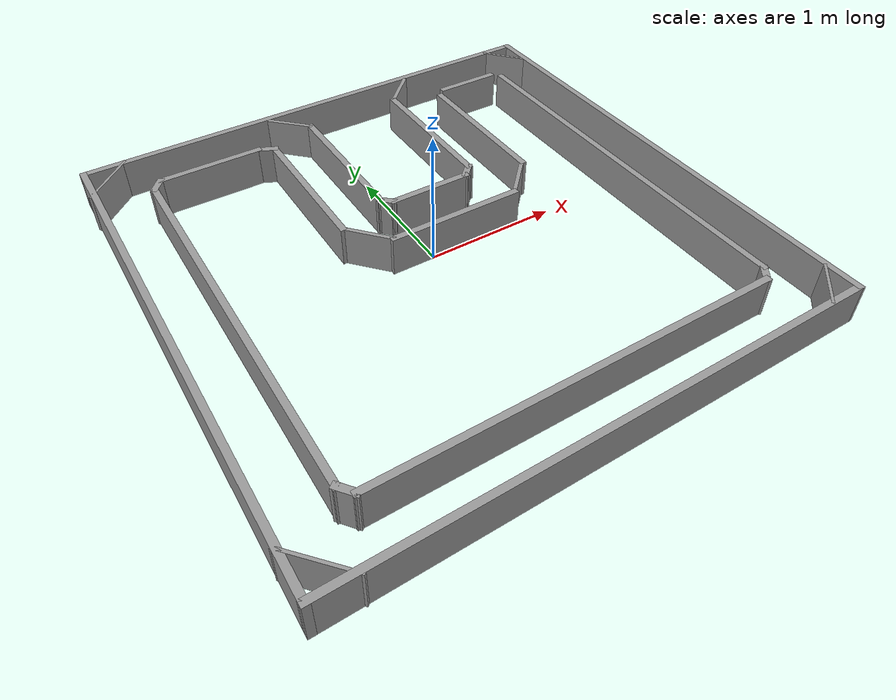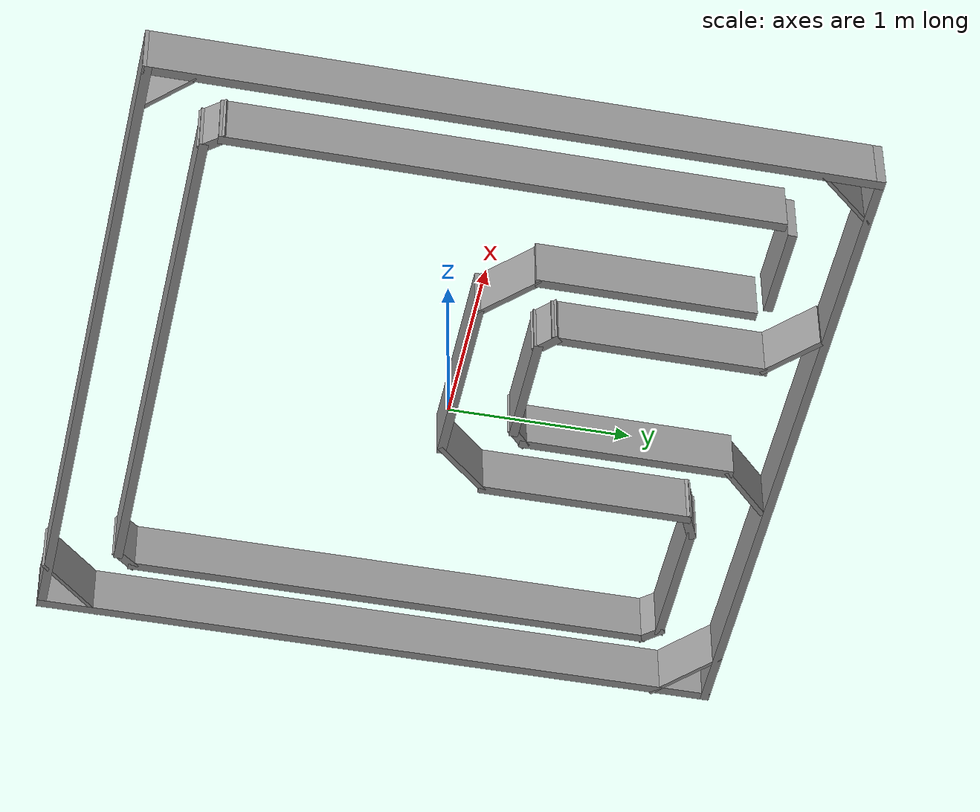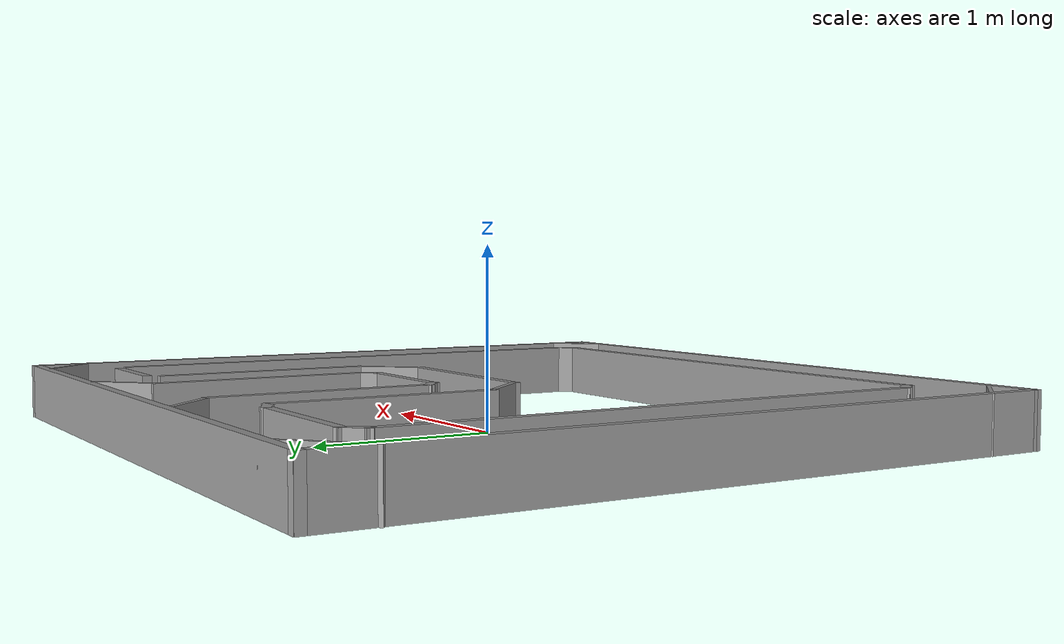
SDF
<?xml version='1.0'?>
<sdf version='1.7'>
  <model name='course1_walls'>
    <pose>0.027463 -0.045325 0 0 -0 0</pose>
    <link name='Wall_10'>
      <collision name='Wall_10_Collision'>
        <geometry>
          <box>
            <size>3.89094 0.05 0.3</size>
          </box>
        </geometry>
        <pose>0 0 0.15 0 -0 0</pose>
      </collision>
      <visual name='Wall_10_Visual'>
        <pose>0 0 0.15 0 -0 0</pose>
        <geometry>
          <box>
            <size>3.89094 0.05 0.3</size>
          </box>
        </geometry>
        <material>
          <script>
            <uri>file://media/materials/scripts/gazebo.material</uri>
            <name>Gazebo/Grey</name>
          </script>
          <ambient>1 1 1 1</ambient>
        </material>
        <meta>
          <layer>0</layer>
        </meta>
      </visual>
      <pose>-1.91746 0.005325 0 0 -0 -1.5708</pose>
    </link>
    <link name='Wall_14'>
      <collision name='Wall_14_Collision'>
        <geometry>
          <box>
            <size>0.371518 0.02 0.3</size>
          </box>
        </geometry>
        <pose>0 0 0.15 0 -0 0</pose>
      </collision>
      <visual name='Wall_14_Visual'>
        <pose>0 0 0.15 0 -0 0</pose>
        <geometry>
          <box>
            <size>0.371518 0.02 0.3</size>
          </box>
        </geometry>
        <material>
          <script>
            <uri>file://media/materials/scripts/gazebo.material</uri>
            <name>Gazebo/Grey</name>
          </script>
          <ambient>1 1 1 1</ambient>
        </material>
        <meta>
          <layer>0</layer>
        </meta>
      </visual>
      <pose>1.79404 -1.78167 0 0 -0 -2.33406</pose>
    </link>
    <link name='Wall_20'>
      <collision name='Wall_20_Collision'>
        <geometry>
          <box>
            <size>3 0.05 0.3</size>
          </box>
        </geometry>
        <pose>0 0 0.15 0 -0 0</pose>
      </collision>
      <visual name='Wall_20_Visual'>
        <pose>0 0 0.15 0 -0 0</pose>
        <geometry>
          <box>
            <size>3 0.05 0.3</size>
          </box>
        </geometry>
        <material>
          <script>
            <uri>file://media/materials/scripts/gazebo.material</uri>
            <name>Gazebo/Grey</name>
          </script>
          <ambient>1 1 1 1</ambient>
        </material>
        <meta>
          <layer>0</layer>
        </meta>
      </visual>
      <pose>0.017537 -1.54468 0 0 -0 0</pose>
    </link>
    <link name='Wall_22'>
      <collision name='Wall_22_Collision'>
        <geometry>
          <box>
            <size>3 0.05 0.3</size>
          </box>
        </geometry>
        <pose>0 0 0.15 0 -0 0</pose>
      </collision>
      <visual name='Wall_22_Visual'>
        <pose>0 0 0.15 0 -0 0</pose>
        <geometry>
          <box>
            <size>3 0.05 0.3</size>
          </box>
        </geometry>
        <material>
          <script>
            <uri>file://media/materials/scripts/gazebo.material</uri>
            <name>Gazebo/Grey</name>
          </script>
          <ambient>1 1 1 1</ambient>
        </material>
        <meta>
          <layer>0</layer>
        </meta>
      </visual>
      <pose>1.56254 0.020325 0 0 -0 -1.5708</pose>
    </link>
    <link name='Wall_26'>
      <collision name='Wall_26_Collision'>
        <geometry>
          <box>
            <size>0.164018 0.05 0.3</size>
          </box>
        </geometry>
        <pose>0 0 0.15 0 -0 0</pose>
      </collision>
      <visual name='Wall_26_Visual'>
        <pose>0 0 0.15 0 -0 0</pose>
        <geometry>
          <box>
            <size>0.164018 0.05 0.3</size>
          </box>
        </geometry>
        <material>
          <script>
            <uri>file://media/materials/scripts/gazebo.material</uri>
            <name>Gazebo/Grey</name>
          </script>
          <ambient>1 1 1 1</ambient>
        </material>
        <meta>
          <layer>0</layer>
        </meta>
      </visual>
      <pose>1.52754 -1.49968 0 0 -0 0.909753</pose>
    </link>
    <link name='Wall_29'>
      <collision name='Wall_29_Collision'>
        <geometry>
          <box>
            <size>0.53 0.05 0.3</size>
          </box>
        </geometry>
        <pose>0 0 0.15 0 -0 0</pose>
      </collision>
      <visual name='Wall_29_Visual'>
        <pose>0 0 0.15 0 -0 0</pose>
        <geometry>
          <box>
            <size>0.53 0.05 0.3</size>
          </box>
        </geometry>
        <material>
          <script>
            <uri>file://media/materials/scripts/gazebo.material</uri>
            <name>Gazebo/Grey</name>
          </script>
          <ambient>1 1 1 1</ambient>
        </material>
        <meta>
          <layer>0</layer>
        </meta>
      </visual>
      <pose>1.25254 1.56533 0 0 -0 0</pose>
    </link>
    <link name='Wall_3'>
      <collision name='Wall_3_Collision'>
        <geometry>
          <box>
            <size>3.90001 0.05 0.3</size>
          </box>
        </geometry>
        <pose>0 0 0.15 0 -0 0</pose>
      </collision>
      <visual name='Wall_3_Visual'>
        <pose>0 0 0.15 0 -0 0</pose>
        <geometry>
          <box>
            <size>3.90001 0.05 0.3</size>
          </box>
        </geometry>
        <material>
          <script>
            <uri>file://media/materials/scripts/gazebo.material</uri>
            <name>Gazebo/Grey</name>
          </script>
          <ambient>1 1 1 1</ambient>
        </material>
        <meta>
          <layer>0</layer>
        </meta>
      </visual>
      <pose>0.007537 -1.90968 0 0 -0 0.002597</pose>
    </link>
    <link name='Wall_33'>
      <collision name='Wall_33_Collision'>
        <geometry>
          <box>
            <size>1.2 0.05 0.3</size>
          </box>
        </geometry>
        <pose>0 0 0.15 0 -0 0</pose>
      </collision>
      <visual name='Wall_33_Visual'>
        <pose>0 0 0.15 0 -0 0</pose>
        <geometry>
          <box>
            <size>1.2 0.05 0.3</size>
          </box>
        </geometry>
        <material>
          <script>
            <uri>file://media/materials/scripts/gazebo.material</uri>
            <name>Gazebo/Grey</name>
          </script>
          <ambient>1 1 1 1</ambient>
        </material>
        <meta>
          <layer>0</layer>
        </meta>
      </visual>
      <pose>0.938351 0.916139 0 0 -0 -1.57047</pose>
    </link>
    <link name='Wall_35'>
      <collision name='Wall_35_Collision'>
        <geometry>
          <box>
            <size>1.188 0.05 0.3</size>
          </box>
        </geometry>
        <pose>0 0 0.15 0 -0 0</pose>
      </collision>
      <visual name='Wall_35_Visual'>
        <pose>0 0 0.15 0 -0 0</pose>
        <geometry>
          <box>
            <size>1.188 0.05 0.3</size>
          </box>
        </geometry>
        <material>
          <script>
            <uri>file://media/materials/scripts/gazebo.material</uri>
            <name>Gazebo/Grey</name>
          </script>
          <ambient>1 1 1 1</ambient>
        </material>
        <meta>
          <layer>0</layer>
        </meta>
      </visual>
      <pose>0.564537 1.07632 0 0 -0 1.5708</pose>
    </link>
    <link name='Wall_37'>
      <collision name='Wall_37_Collision'>
        <geometry>
          <box>
            <size>1.05 0.05 0.3</size>
          </box>
        </geometry>
        <pose>0 0 0.15 0 -0 0</pose>
      </collision>
      <visual name='Wall_37_Visual'>
        <pose>0 0 0.15 0 -0 0</pose>
        <geometry>
          <box>
            <size>1.05 0.05 0.3</size>
          </box>
        </geometry>
        <material>
          <script>
            <uri>file://media/materials/scripts/gazebo.material</uri>
            <name>Gazebo/Grey</name>
          </script>
          <ambient>1 1 1 1</ambient>
        </material>
        <meta>
          <layer>0</layer>
        </meta>
      </visual>
      <pose>0.172537 0.066325 0 0 -0 0</pose>
    </link>
    <link name='Wall_39'>
      <collision name='Wall_39_Collision'>
        <geometry>
          <box>
            <size>0.662 0.05 0.3</size>
          </box>
        </geometry>
        <pose>0 0 0.15 0 -0 0</pose>
      </collision>
      <visual name='Wall_39_Visual'>
        <pose>0 0 0.15 0 -0 0</pose>
        <geometry>
          <box>
            <size>0.662 0.05 0.3</size>
          </box>
        </geometry>
        <material>
          <script>
            <uri>file://media/materials/scripts/gazebo.material</uri>
            <name>Gazebo/Grey</name>
          </script>
          <ambient>1 1 1 1</ambient>
        </material>
        <meta>
          <layer>0</layer>
        </meta>
      </visual>
      <pose>0.178537 0.426325 0 0 -0 0</pose>
    </link>
    <link name='Wall_41'>
      <collision name='Wall_41_Collision'>
        <geometry>
          <box>
            <size>1.196 0.05 0.3</size>
          </box>
        </geometry>
        <pose>0 0 0.15 0 -0 0</pose>
      </collision>
      <visual name='Wall_41_Visual'>
        <pose>0 0 0.15 0 -0 0</pose>
        <geometry>
          <box>
            <size>1.196 0.05 0.3</size>
          </box>
        </geometry>
        <material>
          <script>
            <uri>file://media/materials/scripts/gazebo.material</uri>
            <name>Gazebo/Grey</name>
          </script>
          <ambient>1 1 1 1</ambient>
        </material>
        <meta>
          <layer>0</layer>
        </meta>
      </visual>
      <pose>-0.200463 1.06832 0 0 -0 -1.5708</pose>
    </link>
    <link name='Wall_43'>
      <collision name='Wall_43_Collision'>
        <geometry>
          <box>
            <size>1.201 0.05 0.3</size>
          </box>
        </geometry>
        <pose>0 0 0.15 0 -0 0</pose>
      </collision>
      <visual name='Wall_43_Visual'>
        <pose>0 0 0.15 0 -0 0</pose>
        <geometry>
          <box>
            <size>1.201 0.05 0.3</size>
          </box>
        </geometry>
        <material>
          <script>
            <uri>file://media/materials/scripts/gazebo.material</uri>
            <name>Gazebo/Grey</name>
          </script>
          <ambient>1 1 1 1</ambient>
        </material>
        <meta>
          <layer>0</layer>
        </meta>
      </visual>
      <pose>-0.575463 0.920825 0 0 -0 -1.5708</pose>
    </link>
    <link name='Wall_45'>
      <collision name='Wall_45_Collision'>
        <geometry>
          <box>
            <size>0.816 0.05 0.3</size>
          </box>
        </geometry>
        <pose>0 0 0.15 0 -0 0</pose>
      </collision>
      <visual name='Wall_45_Visual'>
        <pose>0 0 0.15 0 -0 0</pose>
        <geometry>
          <box>
            <size>0.816 0.05 0.3</size>
          </box>
        </geometry>
        <material>
          <script>
            <uri>file://media/materials/scripts/gazebo.material</uri>
            <name>Gazebo/Grey</name>
          </script>
          <ambient>1 1 1 1</ambient>
        </material>
        <meta>
          <layer>0</layer>
        </meta>
      </visual>
      <pose>-1.07446 1.54933 0 0 -0 0</pose>
    </link>
    <link name='Wall_48'>
      <collision name='Wall_48_Collision'>
        <geometry>
          <box>
            <size>2.967 0.05 0.3</size>
          </box>
        </geometry>
        <pose>0 0 0.15 0 -0 0</pose>
      </collision>
      <visual name='Wall_48_Visual'>
        <pose>0 0 0.15 0 -0 0</pose>
        <geometry>
          <box>
            <size>2.967 0.05 0.3</size>
          </box>
        </geometry>
        <material>
          <script>
            <uri>file://media/materials/scripts/gazebo.material</uri>
            <name>Gazebo/Grey</name>
          </script>
          <ambient>1 1 1 1</ambient>
        </material>
        <meta>
          <layer>0</layer>
        </meta>
      </visual>
      <pose>-1.52846 0.003825 0 0 -0 -1.5708</pose>
    </link>
    <link name='Wall_50'>
      <collision name='Wall_50_Collision'>
        <geometry>
          <box>
            <size>0.412598 0.03 0.3</size>
          </box>
        </geometry>
        <pose>0 0 0.15 0 -0 0</pose>
      </collision>
      <visual name='Wall_50_Visual'>
        <pose>0 0 0.15 0 -0 0</pose>
        <geometry>
          <box>
            <size>0.412598 0.03 0.3</size>
          </box>
        </geometry>
        <material>
          <script>
            <uri>file://media/materials/scripts/gazebo.material</uri>
            <name>Gazebo/Grey</name>
          </script>
          <ambient>1 1 1 1</ambient>
        </material>
        <meta>
          <layer>0</layer>
        </meta>
      </visual>
      <pose>0.805537 0.203825 0 0 -0 -2.33956</pose>
    </link>
    <link name='Wall_52'>
      <collision name='Wall_52_Collision'>
        <geometry>
          <box>
            <size>0.403289 0.03 0.3</size>
          </box>
        </geometry>
        <pose>0 0 0.15 0 -0 0</pose>
      </collision>
      <visual name='Wall_52_Visual'>
        <pose>0 0 0.15 0 -0 0</pose>
        <geometry>
          <box>
            <size>0.403289 0.03 0.3</size>
          </box>
        </geometry>
        <material>
          <script>
            <uri>file://media/materials/scripts/gazebo.material</uri>
            <name>Gazebo/Grey</name>
          </script>
          <ambient>1 1 1 1</ambient>
        </material>
        <meta>
          <layer>0</layer>
        </meta>
      </visual>
      <pose>-0.451463 0.205825 0 0 -0 -0.844154</pose>
    </link>
    <link name='Wall_55'>
      <collision name='Wall_55_Collision'>
        <geometry>
          <box>
            <size>0.38 0.03 0.3</size>
          </box>
        </geometry>
        <pose>0 0 0.15 0 -0 0</pose>
      </collision>
      <visual name='Wall_55_Visual'>
        <pose>0 0 0.15 0 -0 0</pose>
        <geometry>
          <box>
            <size>0.38 0.03 0.3</size>
          </box>
        </geometry>
        <material>
          <script>
            <uri>file://media/materials/scripts/gazebo.material</uri>
            <name>Gazebo/Grey</name>
          </script>
          <ambient>1 1 1 1</ambient>
        </material>
        <meta>
          <layer>0</layer>
        </meta>
      </visual>
      <pose>0.688037 1.76883 0 0 -0 0.785398</pose>
    </link>
    <link name='Wall_57'>
      <collision name='Wall_57_Collision'>
        <geometry>
          <box>
            <size>0.38 0.03 0.3</size>
          </box>
        </geometry>
        <pose>0 0 0.15 0 -0 0</pose>
      </collision>
      <visual name='Wall_57_Visual'>
        <pose>0 0 0.15 0 -0 0</pose>
        <geometry>
          <box>
            <size>0.38 0.03 0.3</size>
          </box>
        </geometry>
        <material>
          <script>
            <uri>file://media/materials/scripts/gazebo.material</uri>
            <name>Gazebo/Grey</name>
          </script>
          <ambient>1 1 1 1</ambient>
        </material>
        <meta>
          <layer>0</layer>
        </meta>
      </visual>
      <pose>-0.323963 1.76483 0 0 -0 2.35619</pose>
    </link>
    <link name='Wall_59'>
      <collision name='Wall_59_Collision'>
        <geometry>
          <box>
            <size>0.403642 0.02 0.3</size>
          </box>
        </geometry>
        <pose>0 0 0.15 0 -0 0</pose>
      </collision>
      <visual name='Wall_59_Visual'>
        <pose>0 0 0.15 0 -0 0</pose>
        <geometry>
          <box>
            <size>0.403642 0.02 0.3</size>
          </box>
        </geometry>
        <material>
          <script>
            <uri>file://media/materials/scripts/gazebo.material</uri>
            <name>Gazebo/Grey</name>
          </script>
          <ambient>1 1 1 1</ambient>
        </material>
        <meta>
          <layer>0</layer>
        </meta>
      </visual>
      <pose>1.79754 1.78083 0 0 -0 -0.861039</pose>
    </link>
    <link name='Wall_6'>
      <collision name='Wall_6_Collision'>
        <geometry>
          <box>
            <size>3.88 0.05 0.3</size>
          </box>
        </geometry>
        <pose>0 0 0.15 0 -0 0</pose>
      </collision>
      <visual name='Wall_6_Visual'>
        <pose>0 0 0.15 0 -0 0</pose>
        <geometry>
          <box>
            <size>3.88 0.05 0.3</size>
          </box>
        </geometry>
        <material>
          <script>
            <uri>file://media/materials/scripts/gazebo.material</uri>
            <name>Gazebo/Grey</name>
          </script>
          <ambient>1 1 1 1</ambient>
        </material>
        <meta>
          <layer>0</layer>
        </meta>
      </visual>
      <pose>1.93254 0.010325 0 0 -0 1.5708</pose>
    </link>
    <link name='Wall_61'>
      <collision name='Wall_61_Collision'>
        <geometry>
          <box>
            <size>0.177534 0.05 0.3</size>
          </box>
        </geometry>
        <pose>0 0 0.15 0 -0 0</pose>
      </collision>
      <visual name='Wall_61_Visual'>
        <pose>0 0 0.15 0 -0 0</pose>
        <geometry>
          <box>
            <size>0.177534 0.05 0.3</size>
          </box>
        </geometry>
        <material>
          <script>
            <uri>file://media/materials/scripts/gazebo.material</uri>
            <name>Gazebo/Grey</name>
          </script>
          <ambient>1 1 1 1</ambient>
        </material>
        <meta>
          <layer>0</layer>
        </meta>
      </visual>
      <pose>-0.633463 1.52283 0 0 -0 -0.428574</pose>
    </link>
    <link name='Wall_63'>
      <collision name='Wall_63_Collision'>
        <geometry>
          <box>
            <size>0.162294 0.05 0.3</size>
          </box>
        </geometry>
        <pose>0 0 0.15 0 -0 0</pose>
      </collision>
      <visual name='Wall_63_Visual'>
        <pose>0 0 0.15 0 -0 0</pose>
        <geometry>
          <box>
            <size>0.162294 0.05 0.3</size>
          </box>
        </geometry>
        <material>
          <script>
            <uri>file://media/materials/scripts/gazebo.material</uri>
            <name>Gazebo/Grey</name>
          </script>
          <ambient>1 1 1 1</ambient>
        </material>
        <meta>
          <layer>0</layer>
        </meta>
      </visual>
      <pose>-1.49296 1.50582 0 0 -0 0.88632</pose>
    </link>
    <link name='Wall_65'>
      <collision name='Wall_65_Collision'>
        <geometry>
          <box>
            <size>0.164634 0.05 0.3</size>
          </box>
        </geometry>
        <pose>0 0 0.15 0 -0 0</pose>
      </collision>
      <visual name='Wall_65_Visual'>
        <pose>0 0 0.15 0 -0 0</pose>
        <geometry>
          <box>
            <size>0.164634 0.05 0.3</size>
          </box>
        </geometry>
        <material>
          <script>
            <uri>file://media/materials/scripts/gazebo.material</uri>
            <name>Gazebo/Grey</name>
          </script>
          <ambient>1 1 1 1</ambient>
        </material>
        <meta>
          <layer>0</layer>
        </meta>
      </visual>
      <pose>-1.49296 -1.49968 0 0 -0 -0.902867</pose>
    </link>
    <link name='Wall_67'>
      <collision name='Wall_67_Collision'>
        <geometry>
          <box>
            <size>0.478912 0.02 0.3</size>
          </box>
        </geometry>
        <pose>0 0 0.15 0 -0 0</pose>
      </collision>
      <visual name='Wall_67_Visual'>
        <pose>0 0 0.15 0 -0 0</pose>
        <geometry>
          <box>
            <size>0.478912 0.02 0.3</size>
          </box>
        </geometry>
        <material>
          <script>
            <uri>file://media/materials/scripts/gazebo.material</uri>
            <name>Gazebo/Grey</name>
          </script>
          <ambient>1 1 1 1</ambient>
        </material>
        <meta>
          <layer>0</layer>
        </meta>
      </visual>
      <pose>-1.78046 -1.76568 0 0 -0 -0.840897</pose>
    </link>
    <link name='Wall_69'>
      <collision name='Wall_69_Collision'>
        <geometry>
          <box>
            <size>0.48469 0.02 0.3</size>
          </box>
        </geometry>
        <pose>0 0 0.15 0 -0 0</pose>
      </collision>
      <visual name='Wall_69_Visual'>
        <pose>0 0 0.15 0 -0 0</pose>
        <geometry>
          <box>
            <size>0.48469 0.02 0.3</size>
          </box>
        </geometry>
        <material>
          <script>
            <uri>file://media/materials/scripts/gazebo.material</uri>
            <name>Gazebo/Grey</name>
          </script>
          <ambient>1 1 1 1</ambient>
        </material>
        <meta>
          <layer>0</layer>
        </meta>
      </visual>
      <pose>-1.77546 1.77582 0 0 -0 0.762571</pose>
    </link>
    <link name='Wall_71'>
      <collision name='Wall_71_Collision'>
        <geometry>
          <box>
            <size>0.150449 0.05 0.3</size>
          </box>
        </geometry>
        <pose>0 0 0.15 0 -0 0</pose>
      </collision>
      <visual name='Wall_71_Visual'>
        <pose>0 0 0.15 0 -0 0</pose>
        <geometry>
          <box>
            <size>0.150449 0.05 0.3</size>
          </box>
        </geometry>
        <material>
          <script>
            <uri>file://media/materials/scripts/gazebo.material</uri>
            <name>Gazebo/Grey</name>
          </script>
          <ambient>1 1 1 1</ambient>
        </material>
        <meta>
          <layer>0</layer>
        </meta>
      </visual>
      <pose>-0.163963 0.460825 0 0 -0 -0.757237</pose>
    </link>
    <link name='Wall_73'>
      <collision name='Wall_73_Collision'>
        <geometry>
          <box>
            <size>0.163846 0.05 0.3</size>
          </box>
        </geometry>
        <pose>0 0 0.15 0 -0 0</pose>
      </collision>
      <visual name='Wall_73_Visual'>
        <pose>0 0 0.15 0 -0 0</pose>
        <geometry>
          <box>
            <size>0.163846 0.05 0.3</size>
          </box>
        </geometry>
        <material>
          <script>
            <uri>file://media/materials/scripts/gazebo.material</uri>
            <name>Gazebo/Grey</name>
          </script>
          <ambient>1 1 1 1</ambient>
        </material>
        <meta>
          <layer>0</layer>
        </meta>
      </visual>
      <pose>0.524537 0.466825 0 0 -0 0.791609</pose>
    </link>
    <link name='Wall_8'>
      <collision name='Wall_8_Collision'>
        <geometry>
          <box>
            <size>3.9 0.05 0.3</size>
          </box>
        </geometry>
        <pose>0 0 0.15 0 -0 0</pose>
      </collision>
      <visual name='Wall_8_Visual'>
        <pose>0 0 0.15 0 -0 0</pose>
        <geometry>
          <box>
            <size>3.9 0.05 0.3</size>
          </box>
        </geometry>
        <material>
          <script>
            <uri>file://media/materials/scripts/gazebo.material</uri>
            <name>Gazebo/Grey</name>
          </script>
          <ambient>1 1 1 1</ambient>
        </material>
        <meta>
          <layer>0</layer>
        </meta>
      </visual>
      <pose>0.007537 1.92532 0 0 -0 3.14159</pose>
    </link>
    <static>1</static>
  </model>
</sdf>
